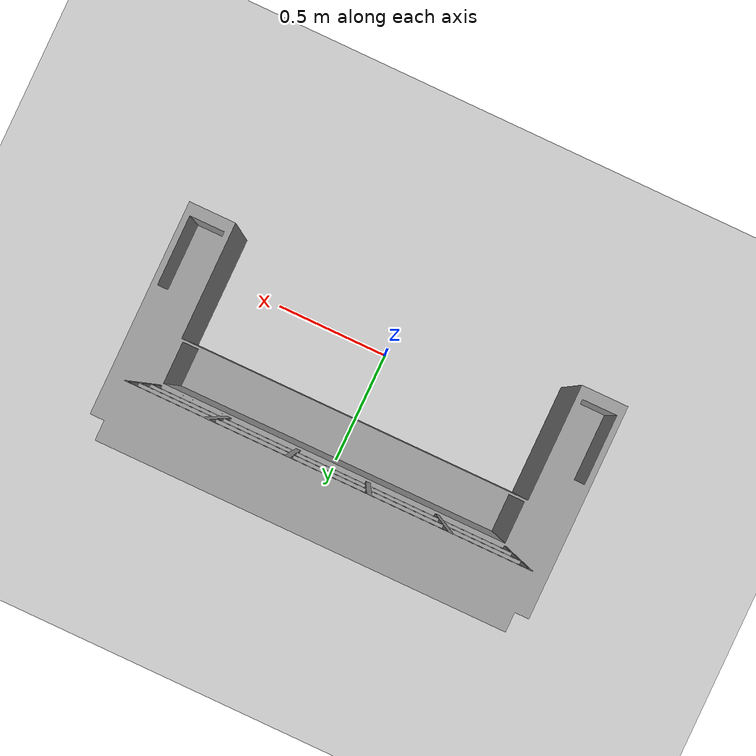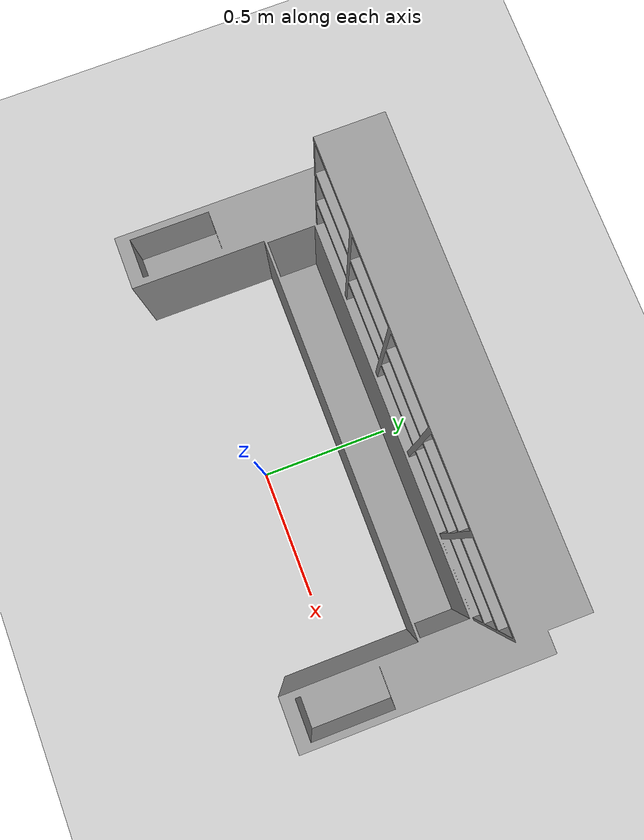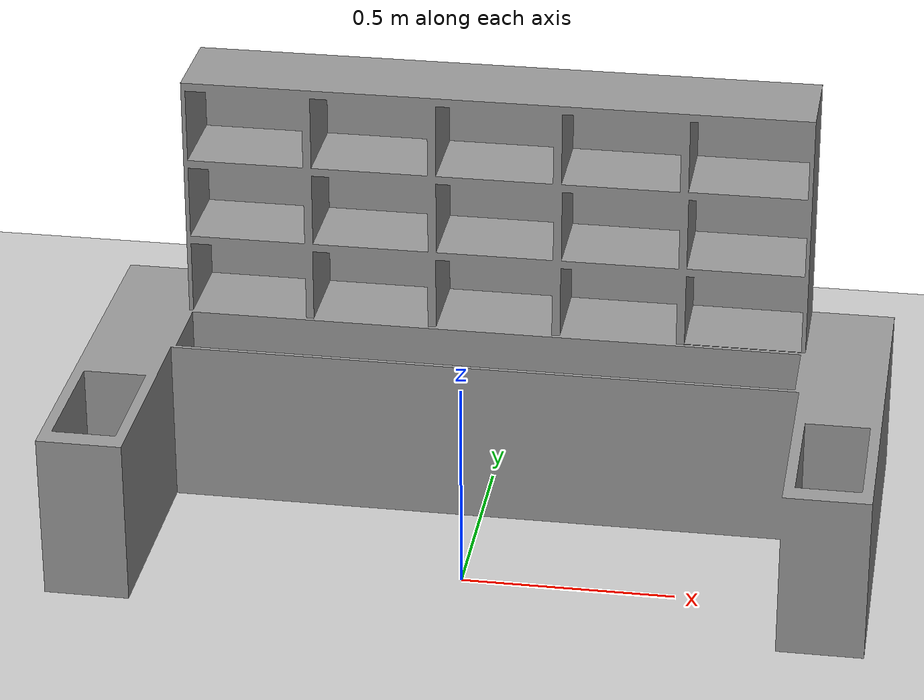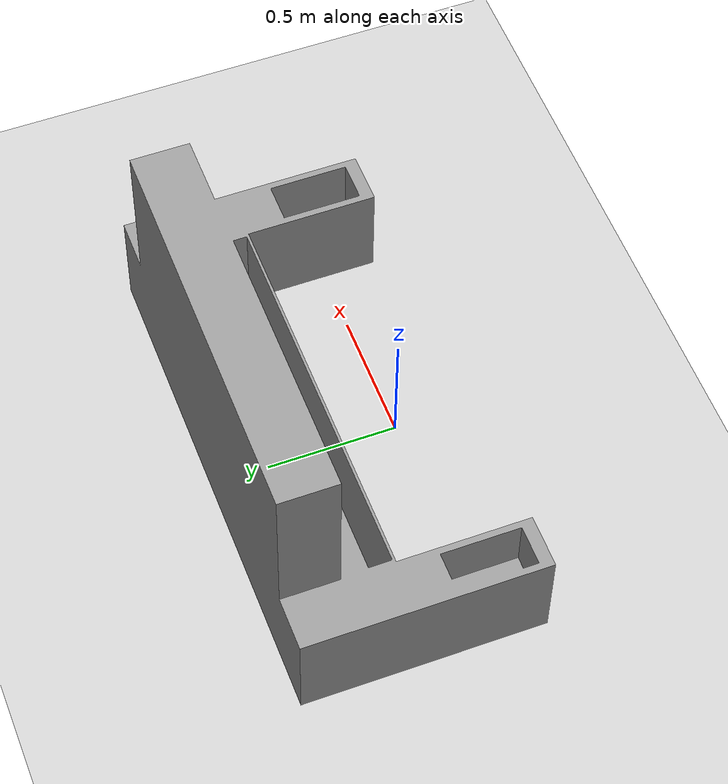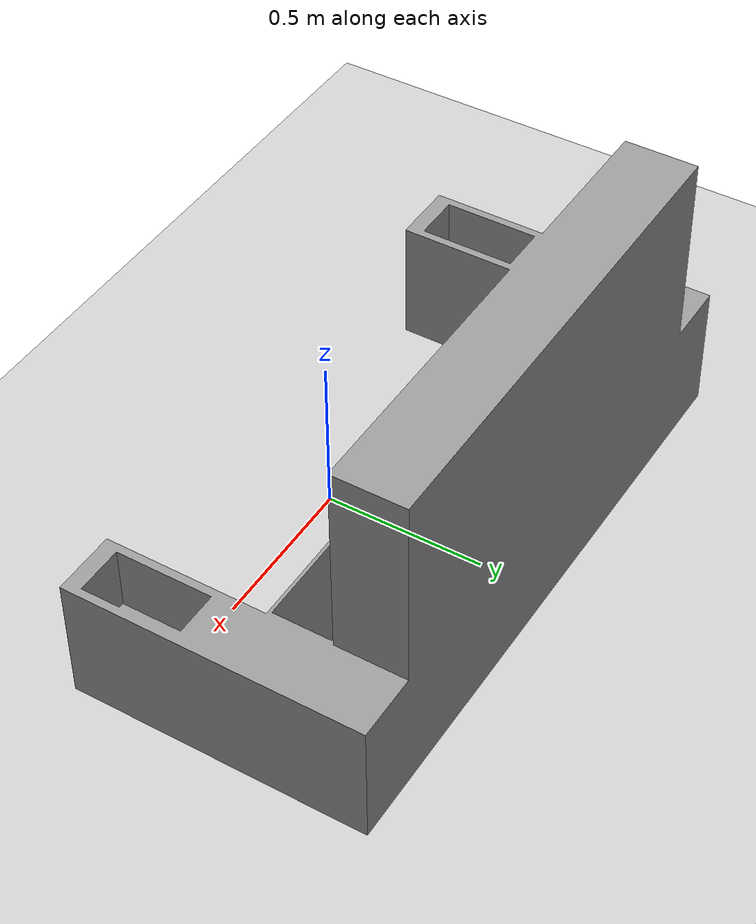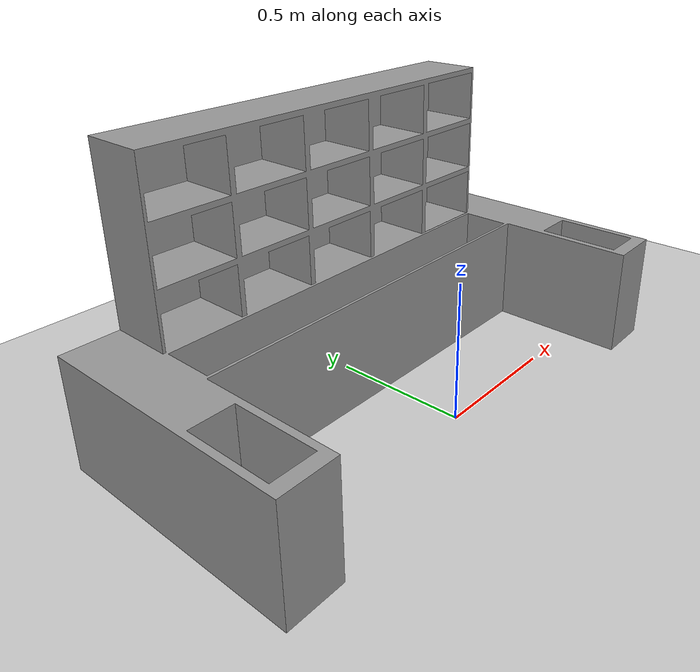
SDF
<sdf version="1.7">
 <world name="default">
  <light name="sun" type="directional">
   <pose>0 0 10 0 -0 0</pose>
   <diffuse>0.8 0.8 0.8 1</diffuse>
   <specular>0.2 0.2 0.2 1</specular>
   <attenuation>
    <range>1000</range>
    <constant>0.9</constant>
    <linear>0.01</linear>
    <quadratic>0.001</quadratic>
   </attenuation>
   <direction>-0.5 0.1 -0.9</direction>
   <spot><inner_angle>0</inner_angle><outer_angle>0</outer_angle><falloff>0</falloff></spot>
  </light>
  <model name="ground_plane">
   <static>1</static>
   <link name="link">
    <collision name="collision">
     <geometry><plane><normal>0 0 1</normal><size>100 100</size></plane></geometry>
     <surface><friction><ode><mu>100</mu><mu2>50</mu2></ode></friction></surface>
    </collision>
    <visual name="visual">
     <cast_shadows>0</cast_shadows>
     <geometry><plane><normal>0 0 1</normal><size>100 100</size></plane></geometry>
     <material>
      <script><uri>file://media/materials/scripts/gazebo.material</uri><name>Gazebo/Grey</name></script>
     </material>
    </visual>
   </link>
  </model>
  <gravity>0 0 -9.8</gravity>
  <magnetic_field>6e-06 2.3e-05 -4.2e-05</magnetic_field>
  <atmosphere type="adiabatic"/>
  <physics type="ode">
   <max_step_size>0.001</max_step_size>
   <real_time_factor>1</real_time_factor>
   <real_time_update_rate>1000</real_time_update_rate>
  </physics>
  <scene><ambient>0.4 0.4 0.4 1</ambient><background>0.7 0.7 0.7 1</background><shadows>0</shadows></scene>
  <audio><device>default</device></audio>
  <spherical_coordinates>
   <surface_model>EARTH_WGS84</surface_model>
   <latitude_deg>0</latitude_deg>
   <longitude_deg>0</longitude_deg>
   <elevation>0</elevation>
   <heading_deg>0</heading_deg>
  </spherical_coordinates>
  <model name="obj">
   <joint name="fixed_shelf" type="fixed">
    <pose relative_to="__model__">0 0 0 0 -0 0</pose>
    <parent>world</parent>
    <child>shelf</child>
   </joint>
   <link name="shelf">
    <pose relative_to="fixed_shelf">0 0 0 0 -0 0</pose>
    <inertial>
     <pose>0 0.3 0 0 -0 0</pose>
     <mass>316</mass>
     <inertia>
      <ixx>68.8</ixx>
      <ixy>7.56</ixy>
      <ixz>-0.58</ixz>
      <iyy>148.1</iyy>
      <iyz>-6.9</iyz>
      <izz>182.29</izz>
     </inertia>
    </inertial>
    <collision name="shelf_collision">
     <pose>0 0.3 0 0 -0 0</pose>
     <geometry><mesh><scale>1 1 1</scale><uri>model://robot_description/meshes/shelf.STL</uri></mesh></geometry>
    </collision>
    <visual name="shelf_visual">
     <pose>0 0.3 0 0 -0 0</pose>
     <geometry><mesh><scale>1 1 1</scale><uri>model://robot_description/meshes/shelf.STL</uri></mesh></geometry>
     <material>
      <script><name>Gazebo/Gray</name><uri>file://media/materials/scripts/gazebo.material</uri></script>
     </material>
    </visual>
   </link>
  </model>
 </world>
</sdf>
